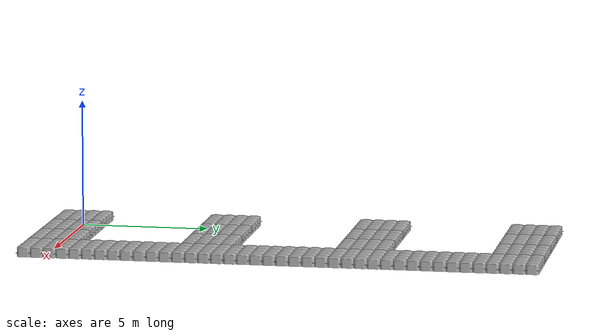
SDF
<?xml version="1.0" ?>
<sdf version="1.6">

  <!-- Important: This file is generated. DO NOT EDIT! -->

  <model name="robotx_dock_2024_base">
    <selfCollide>false</selfCollide>

    <!--
      This is how this dock should look like:

          X  X  X  X          X  X  X  X          X  X  X  X          XXXXXXXXXX
    -->

      <static>true</static>

    <!-- Row 0 -->
    <include>
      <name>dock_block_0_0</name>
      <pose>0 0 0.25 0 0 0</pose>
        <uri>model://dock_block_4x4</uri>
    </include>
    <include>
      <name>dock_block_0_3</name>
      <pose>0 6 0.25 0 0 0</pose>
        <uri>model://dock_block_4x4</uri>
    </include>
    <include>
      <name>dock_block_0_6</name>
      <pose>0 12 0.25 0 0 0</pose>
        <uri>model://dock_block_4x4</uri>
    </include>
    <include>
      <name>dock_block_0_9</name>
      <pose>0 18 0.25 0 0 0</pose>
        <uri>model://dock_block_4x4</uri>
    </include>

    <!-- Row 1 -->
    <include>
      <name>dock_block_1_0</name>
      <pose>2 0 0.25 0 0 0</pose>
        <uri>model://dock_block_4x4</uri>
    </include>
    <include>
      <name>dock_block_1_3</name>
      <pose>2 6 0.25 0 0 0</pose>
        <uri>model://dock_block_4x4</uri>
    </include>
    <include>
      <name>dock_block_1_6</name>
      <pose>2 12 0.25 0 0 0</pose>
        <uri>model://dock_block_4x4</uri>
    </include>
    <include>
      <name>dock_block_1_9</name>
      <pose>2 18 0.25 0 0 0</pose>
        <uri>model://dock_block_4x4</uri>
    </include>

    <!-- Row 2 -->
    <include>
      <name>dock_block_2_0</name>
      <pose>4 0 0.25 0 0 0</pose>
        <uri>model://dock_block_4x4</uri>
    </include>
    <include>
      <name>dock_block_2_3</name>
      <pose>4 6 0.25 0 0 0</pose>
        <uri>model://dock_block_4x4</uri>
    </include>
    <include>
      <name>dock_block_2_6</name>
      <pose>4 12 0.25 0 0 0</pose>
        <uri>model://dock_block_4x4</uri>
    </include>
    <include>
      <name>dock_block_2_9</name>
      <pose>4 18 0.25 0 0 0</pose>
        <uri>model://dock_block_4x4</uri>
    </include>

    <!-- Row 3 -->
    <include>
      <name>dock_block_3_0</name>
      <pose>6 0 0.25 0 0 0</pose>
        <uri>model://dock_block_4x4</uri>
    </include>
    <include>
      <name>dock_block_3_1</name>
      <pose>6 2 0.25 0 0 0</pose>
        <uri>model://dock_block_4x4</uri>
    </include>
    <include>
      <name>dock_block_3_2</name>
      <pose>6 4 0.25 0 0 0</pose>
        <uri>model://dock_block_4x4</uri>
    </include>
    <include>
      <name>dock_block_3_3</name>
      <pose>6 6 0.25 0 0 0</pose>
        <uri>model://dock_block_4x4</uri>
    </include>
    <include>
      <name>dock_block_3_4</name>
      <pose>6 8 0.25 0 0 0</pose>
        <uri>model://dock_block_4x4</uri>
    </include>
    <include>
      <name>dock_block_3_5</name>
      <pose>6 10 0.25 0 0 0</pose>
        <uri>model://dock_block_4x4</uri>
    </include>
    <include>
      <name>dock_block_3_6</name>
      <pose>6 12 0.25 0 0 0</pose>
        <uri>model://dock_block_4x4</uri>
    </include>
    <include>
      <name>dock_block_3_7</name>
      <pose>6 14 0.25 0 0 0</pose>
        <uri>model://dock_block_4x4</uri>
    </include>
    <include>
      <name>dock_block_3_8</name>
      <pose>6 16 0.25 0 0 0</pose>
        <uri>model://dock_block_4x4</uri>
    </include>
    <include>
      <name>dock_block_3_9</name>
      <pose>6 18 0.25 0 0 0</pose>
        <uri>model://dock_block_4x4</uri>
    </include>

  </model>
</sdf>

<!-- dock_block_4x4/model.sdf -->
<sdf version="1.5">
  <model name="dock_block_4x4">
    <static>false</static>
    <link name="link">
      <velocity_decay>
        <linear>0.001</linear>
        <angular>0.001</angular>
      </velocity_decay>
       <inertial>
        <pose>0 0 0 0 0 0</pose>
        <mass>160</mass>
        <inertia>
          <ixx>55.467</ixx>
          <ixy>0</ixy>
          <ixz>0</ixz>
          <iyy>55.467</iyy>
          <iyz>0</iyz>
          <izz>106.67</izz>
        </inertia>
      </inertial>
      <collision name="collision">
        <pose>0 0 0 0 0 0</pose>
        <geometry>
          <box>
            <size>2 2 0.4</size>
          </box>
        </geometry>
      </collision>
      <visual name="visual">
        <pose>-0.25 0.25 0.2 0 0 0 </pose>
        <geometry>
          <mesh>
            <uri>file://dock_block_4x4/mesh/dock_block_4x4.dae</uri>
          </mesh>
        </geometry>
      </visual>
    </link>
    <plugin name="BuoyancyPlugin" filename="libbuoyancy_gazebo_plugin.so">
      <wave_model>ocean_waves</wave_model>
      <fluid_density>1000</fluid_density>
      <fluid_level>0</fluid_level>
      <linear_drag>1000.0</linear_drag>
      <angular_drag>200.0</angular_drag>
      <buoyancy name="buoyancy_base">
        <link_name>link</link_name>
      	<pose>0 0 0 0 0 0</pose>
        <geometry>
	  <sphere>
            <radius>0.72557</radius>
          </sphere>
	</geometry>
      </buoyancy>
    </plugin>
  </model>
</sdf>
